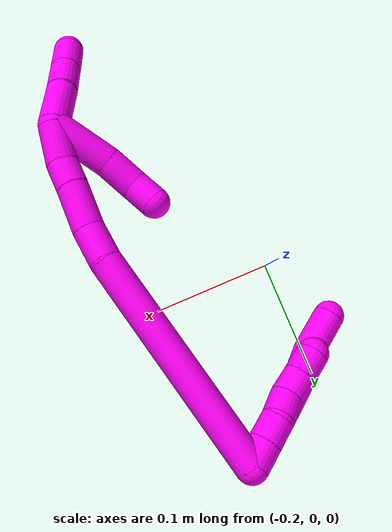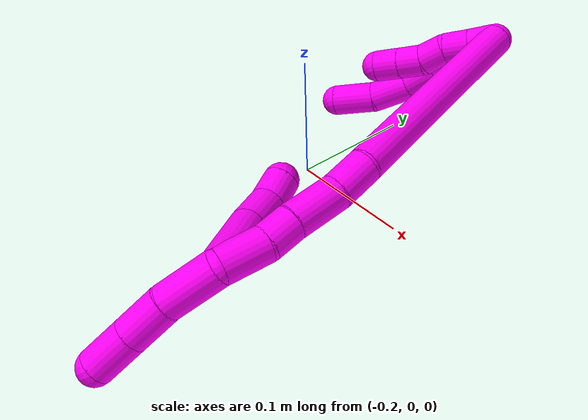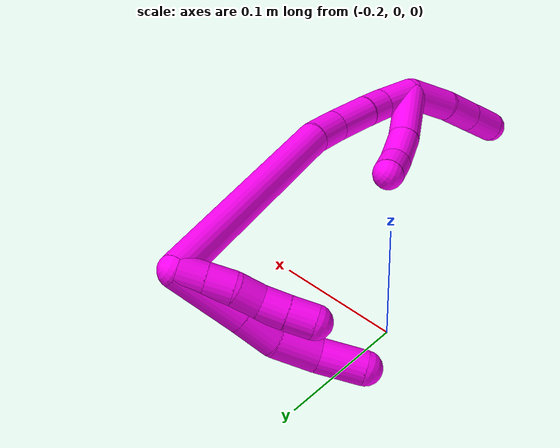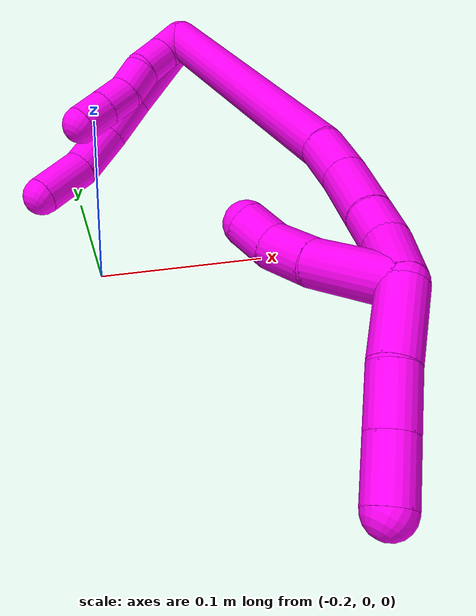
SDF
<sdf version="1.7">
 <world name="default">
  <model name="10">
   <static>0</static>
   <link name="10">
    <collision name="collision-cylinder-e_1_2_8">
     <pose>0.00027 0.003847 -0.027389 -3.00204 0.009757 -0.13939</pose>
     <geometry><cylinder><radius>0.0125</radius><length>0.055318</length></cylinder></geometry>
     <surface>
      <friction><ode><mu>1.16</mu><mu2>1.16</mu2><slip1>0</slip1><slip2>0</slip2></ode></friction>
      <contact><ode><kp>1e+06</kp><kd>1</kd><max_vel>0</max_vel><min_depth>0.001</min_depth></ode></contact>
     </surface>
    </collision>
    <visual name="visual-cylinder-e_1_2_8">
     <pose>0.00027 0.003847 -0.027389 -3.00204 0.009757 -0.13939</pose>
     <geometry><cylinder><radius>0.0125</radius><length>0.055318</length></cylinder></geometry>
     <material><ambient>1 0 0.964706 1</ambient></material>
    </visual>
    <collision name="collision-cylinder-e_2_8_9">
     <pose>0.00124 0.009757 -0.068699 -2.9945 0.049741 -0.651205</pose>
     <geometry><cylinder><radius>0.0125</radius><length>0.028182</length></cylinder></geometry>
     <surface>
      <friction><ode><mu>1.16</mu><mu2>1.16</mu2><slip1>0</slip1><slip2>0</slip2></ode></friction>
      <contact><ode><kp>1e+06</kp><kd>1</kd><max_vel>0</max_vel><min_depth>0.001</min_depth></ode></contact>
     </surface>
    </collision>
    <visual name="visual-cylinder-e_2_8_9">
     <pose>0.00124 0.009757 -0.068699 -2.9945 0.049741 -0.651205</pose>
     <geometry><cylinder><radius>0.0125</radius><length>0.028182</length></cylinder></geometry>
     <material><ambient>1 0 0.964706 1</ambient></material>
    </visual>
    <collision name="collision-cylinder-e_3_9_10">
     <pose>-0.000244 0.010872 -0.098638 3.08253 -0.135334 -2.31944</pose>
     <geometry><cylinder><radius>0.0125</radius><length>0.032387</length></cylinder></geometry>
     <surface>
      <friction><ode><mu>1.16</mu><mu2>1.16</mu2><slip1>0</slip1><slip2>0</slip2></ode></friction>
      <contact><ode><kp>1e+06</kp><kd>1</kd><max_vel>0</max_vel><min_depth>0.001</min_depth></ode></contact>
     </surface>
    </collision>
    <visual name="visual-cylinder-e_3_9_10">
     <pose>-0.000244 0.010872 -0.098638 3.08253 -0.135334 -2.31944</pose>
     <geometry><cylinder><radius>0.0125</radius><length>0.032387</length></cylinder></geometry>
     <material><ambient>1 0 0.964706 1</ambient></material>
    </visual>
    <collision name="collision-cylinder-e_4_10_6">
     <pose>-0.008665 0.009795 -0.130531 3.13341 -0.374285 -3.09837</pose>
     <geometry><cylinder><radius>0.0125</radius><length>0.034114</length></cylinder></geometry>
     <surface>
      <friction><ode><mu>1.16</mu><mu2>1.16</mu2><slip1>0</slip1><slip2>0</slip2></ode></friction>
      <contact><ode><kp>1e+06</kp><kd>1</kd><max_vel>0</max_vel><min_depth>0.001</min_depth></ode></contact>
     </surface>
    </collision>
    <visual name="visual-cylinder-e_4_10_6">
     <pose>-0.008665 0.009795 -0.130531 3.13341 -0.374285 -3.09837</pose>
     <geometry><cylinder><radius>0.0125</radius><length>0.034114</length></cylinder></geometry>
     <material><ambient>1 0 0.964706 1</ambient></material>
    </visual>
    <collision name="collision-cylinder-e_1_2_11">
     <pose>-0.002841 -0.00013 -0.009587 3.12805 -0.288077 -3.04826</pose>
     <geometry><cylinder><radius>0.0125</radius><length>0.02</length></cylinder></geometry>
     <surface>
      <friction><ode><mu>1.16</mu><mu2>1.16</mu2><slip1>0</slip1><slip2>0</slip2></ode></friction>
      <contact><ode><kp>1e+06</kp><kd>1</kd><max_vel>0</max_vel><min_depth>0.001</min_depth></ode></contact>
     </surface>
    </collision>
    <visual name="visual-cylinder-e_1_2_11">
     <pose>-0.002841 -0.00013 -0.009587 3.12805 -0.288077 -3.04826</pose>
     <geometry><cylinder><radius>0.0125</radius><length>0.02</length></cylinder></geometry>
     <material><ambient>1 0 0.964706 1</ambient></material>
    </visual>
    <collision name="collision-cylinder-e_2_11_12">
     <pose>-0.008799 -0.000257 -0.028676 -3.14126 -0.316931 3.13949</pose>
     <geometry><cylinder><radius>0.0125</radius><length>0.02</length></cylinder></geometry>
     <surface>
      <friction><ode><mu>1.16</mu><mu2>1.16</mu2><slip1>0</slip1><slip2>0</slip2></ode></friction>
      <contact><ode><kp>1e+06</kp><kd>1</kd><max_vel>0</max_vel><min_depth>0.001</min_depth></ode></contact>
     </surface>
    </collision>
    <visual name="visual-cylinder-e_2_11_12">
     <pose>-0.008799 -0.000257 -0.028676 -3.14126 -0.316931 3.13949</pose>
     <geometry><cylinder><radius>0.0125</radius><length>0.02</length></cylinder></geometry>
     <material><ambient>1 0 0.964706 1</ambient></material>
    </visual>
    <collision name="collision-cylinder-e_3_12_13">
     <pose>-0.012127 -0.000143 -0.048175 -3.13055 -0.02117 2.17983</pose>
     <geometry><cylinder><radius>0.0125</radius><length>0.02</length></cylinder></geometry>
     <surface>
      <friction><ode><mu>1.16</mu><mu2>1.16</mu2><slip1>0</slip1><slip2>0</slip2></ode></friction>
      <contact><ode><kp>1e+06</kp><kd>1</kd><max_vel>0</max_vel><min_depth>0.001</min_depth></ode></contact>
     </surface>
    </collision>
    <visual name="visual-cylinder-e_3_12_13">
     <pose>-0.012127 -0.000143 -0.048175 -3.13055 -0.02117 2.17983</pose>
     <geometry><cylinder><radius>0.0125</radius><length>0.02</length></cylinder></geometry>
     <material><ambient>1 0 0.964706 1</ambient></material>
    </visual>
    <collision name="collision-cylinder-e_4_13_14">
     <pose>-0.015502 0.000619 -0.067636 -3.07284 -0.321883 2.72411</pose>
     <geometry><cylinder><radius>0.0125</radius><length>0.02</length></cylinder></geometry>
     <surface>
      <friction><ode><mu>1.16</mu><mu2>1.16</mu2><slip1>0</slip1><slip2>0</slip2></ode></friction>
      <contact><ode><kp>1e+06</kp><kd>1</kd><max_vel>0</max_vel><min_depth>0.001</min_depth></ode></contact>
     </surface>
    </collision>
    <visual name="visual-cylinder-e_4_13_14">
     <pose>-0.015502 0.000619 -0.067636 -3.07284 -0.321883 2.72411</pose>
     <geometry><cylinder><radius>0.0125</radius><length>0.02</length></cylinder></geometry>
     <material><ambient>1 0 0.964706 1</ambient></material>
    </visual>
    <collision name="collision-cylinder-e_5_14_5">
     <pose>-0.021994 0.001581 -0.086525 -3.10868 -0.339322 2.95001</pose>
     <geometry><cylinder><radius>0.0125</radius><length>0.02</length></cylinder></geometry>
     <surface>
      <friction><ode><mu>1.16</mu><mu2>1.16</mu2><slip1>0</slip1><slip2>0</slip2></ode></friction>
      <contact><ode><kp>1e+06</kp><kd>1</kd><max_vel>0</max_vel><min_depth>0.001</min_depth></ode></contact>
     </surface>
    </collision>
    <visual name="visual-cylinder-e_5_14_5">
     <pose>-0.021994 0.001581 -0.086525 -3.10868 -0.339322 2.95001</pose>
     <geometry><cylinder><radius>0.0125</radius><length>0.02</length></cylinder></geometry>
     <material><ambient>1 0 0.964706 1</ambient></material>
    </visual>
    <collision name="collision-cylinder-e_1_2_15">
     <pose>0.00392 -0.083376 -0.03699 1.98836 0.04295 0.066028</pose>
     <geometry><cylinder><radius>0.0125</radius><length>0.182595</length></cylinder></geometry>
     <surface>
      <friction><ode><mu>1.16</mu><mu2>1.16</mu2><slip1>0</slip1><slip2>0</slip2></ode></friction>
      <contact><ode><kp>1e+06</kp><kd>1</kd><max_vel>0</max_vel><min_depth>0.001</min_depth></ode></contact>
     </surface>
    </collision>
    <visual name="visual-cylinder-e_1_2_15">
     <pose>0.00392 -0.083376 -0.03699 1.98836 0.04295 0.066028</pose>
     <geometry><cylinder><radius>0.0125</radius><length>0.182595</length></cylinder></geometry>
     <material><ambient>1 0 0.964706 1</ambient></material>
    </visual>
    <collision name="collision-cylinder-e_2_15_16">
     <pose>0.008983 -0.178332 -0.081814 2.16563 0.081601 0.153515</pose>
     <geometry><cylinder><radius>0.0125</radius><length>0.028055</length></cylinder></geometry>
     <surface>
      <friction><ode><mu>1.16</mu><mu2>1.16</mu2><slip1>0</slip1><slip2>0</slip2></ode></friction>
      <contact><ode><kp>1e+06</kp><kd>1</kd><max_vel>0</max_vel><min_depth>0.001</min_depth></ode></contact>
     </surface>
    </collision>
    <visual name="visual-cylinder-e_2_15_16">
     <pose>0.008983 -0.178332 -0.081814 2.16563 0.081601 0.153515</pose>
     <geometry><cylinder><radius>0.0125</radius><length>0.028055</length></cylinder></geometry>
     <material><ambient>1 0 0.964706 1</ambient></material>
    </visual>
    <collision name="collision-cylinder-e_3_16_17">
     <pose>0.009312 -0.204278 -0.100575 2.22099 -0.045106 -0.090924</pose>
     <geometry><cylinder><radius>0.0125</radius><length>0.036136</length></cylinder></geometry>
     <surface>
      <friction><ode><mu>1.16</mu><mu2>1.16</mu2><slip1>0</slip1><slip2>0</slip2></ode></friction>
      <contact><ode><kp>1e+06</kp><kd>1</kd><max_vel>0</max_vel><min_depth>0.001</min_depth></ode></contact>
     </surface>
    </collision>
    <visual name="visual-cylinder-e_3_16_17">
     <pose>0.009312 -0.204278 -0.100575 2.22099 -0.045106 -0.090924</pose>
     <geometry><cylinder><radius>0.0125</radius><length>0.036136</length></cylinder></geometry>
     <material><ambient>1 0 0.964706 1</ambient></material>
    </visual>
    <collision name="collision-cylinder-e_4_17_18">
     <pose>0.008937 -0.227102 -0.118038 2.22884 0.041151 0.083783</pose>
     <geometry><cylinder><radius>0.0125</radius><length>0.021396</length></cylinder></geometry>
     <surface>
      <friction><ode><mu>1.16</mu><mu2>1.16</mu2><slip1>0</slip1><slip2>0</slip2></ode></friction>
      <contact><ode><kp>1e+06</kp><kd>1</kd><max_vel>0</max_vel><min_depth>0.001</min_depth></ode></contact>
     </surface>
    </collision>
    <visual name="visual-cylinder-e_4_17_18">
     <pose>0.008937 -0.227102 -0.118038 2.22884 0.041151 0.083783</pose>
     <geometry><cylinder><radius>0.0125</radius><length>0.021396</length></cylinder></geometry>
     <material><ambient>1 0 0.964706 1</ambient></material>
    </visual>
    <collision name="collision-cylinder-e_5_18_1">
     <pose>0.006874 -0.247062 -0.135276 2.32009 -0.158002 -0.359616</pose>
     <geometry><cylinder><radius>0.0125</radius><length>0.031819</length></cylinder></geometry>
     <surface>
      <friction><ode><mu>1.16</mu><mu2>1.16</mu2><slip1>0</slip1><slip2>0</slip2></ode></friction>
      <contact><ode><kp>1e+06</kp><kd>1</kd><max_vel>0</max_vel><min_depth>0.001</min_depth></ode></contact>
     </surface>
    </collision>
    <visual name="visual-cylinder-e_5_18_1">
     <pose>0.006874 -0.247062 -0.135276 2.32009 -0.158002 -0.359616</pose>
     <geometry><cylinder><radius>0.0125</radius><length>0.031819</length></cylinder></geometry>
     <material><ambient>1 0 0.964706 1</ambient></material>
    </visual>
    <collision name="collision-cylinder-e_1_1_19">
     <pose>0.005836 -0.265132 -0.164572 2.80211 0.074159 0.426316</pose>
     <geometry><cylinder><radius>0.0125</radius><length>0.039548</length></cylinder></geometry>
     <surface>
      <friction><ode><mu>1.16</mu><mu2>1.16</mu2><slip1>0</slip1><slip2>0</slip2></ode></friction>
      <contact><ode><kp>1e+06</kp><kd>1</kd><max_vel>0</max_vel><min_depth>0.001</min_depth></ode></contact>
     </surface>
    </collision>
    <visual name="visual-cylinder-e_1_1_19">
     <pose>0.005836 -0.265132 -0.164572 2.80211 0.074159 0.426316</pose>
     <geometry><cylinder><radius>0.0125</radius><length>0.039548</length></cylinder></geometry>
     <material><ambient>1 0 0.964706 1</ambient></material>
    </visual>
    <collision name="collision-cylinder-e_2_19_20">
     <pose>0.010551 -0.27664 -0.19696 2.79761 0.218237 1.12535</pose>
     <geometry><cylinder><radius>0.0125</radius><length>0.030018</length></cylinder></geometry>
     <surface>
      <friction><ode><mu>1.16</mu><mu2>1.16</mu2><slip1>0</slip1><slip2>0</slip2></ode></friction>
      <contact><ode><kp>1e+06</kp><kd>1</kd><max_vel>0</max_vel><min_depth>0.001</min_depth></ode></contact>
     </surface>
    </collision>
    <visual name="visual-cylinder-e_2_19_20">
     <pose>0.010551 -0.27664 -0.19696 2.79761 0.218237 1.12535</pose>
     <geometry><cylinder><radius>0.0125</radius><length>0.030018</length></cylinder></geometry>
     <material><ambient>1 0 0.964706 1</ambient></material>
    </visual>
    <collision name="collision-cylinder-e_3_20_4">
     <pose>0.017082 -0.28662 -0.224734 2.79568 0.217351 1.1165</pose>
     <geometry><cylinder><radius>0.0125</radius><length>0.030434</length></cylinder></geometry>
     <surface>
      <friction><ode><mu>1.16</mu><mu2>1.16</mu2><slip1>0</slip1><slip2>0</slip2></ode></friction>
      <contact><ode><kp>1e+06</kp><kd>1</kd><max_vel>0</max_vel><min_depth>0.001</min_depth></ode></contact>
     </surface>
    </collision>
    <visual name="visual-cylinder-e_3_20_4">
     <pose>0.017082 -0.28662 -0.224734 2.79568 0.217351 1.1165</pose>
     <geometry><cylinder><radius>0.0125</radius><length>0.030434</length></cylinder></geometry>
     <material><ambient>1 0 0.964706 1</ambient></material>
    </visual>
    <collision name="collision-cylinder-e_1_1_21">
     <pose>0.002612 -0.233523 -0.146331 -1.58489 -0.070102 0.071097</pose>
     <geometry><cylinder><radius>0.0125</radius><length>0.050214</length></cylinder></geometry>
     <surface>
      <friction><ode><mu>1.16</mu><mu2>1.16</mu2><slip1>0</slip1><slip2>0</slip2></ode></friction>
      <contact><ode><kp>1e+06</kp><kd>1</kd><max_vel>0</max_vel><min_depth>0.001</min_depth></ode></contact>
     </surface>
    </collision>
    <visual name="visual-cylinder-e_1_1_21">
     <pose>0.002612 -0.233523 -0.146331 -1.58489 -0.070102 0.071097</pose>
     <geometry><cylinder><radius>0.0125</radius><length>0.050214</length></cylinder></geometry>
     <material><ambient>1 0 0.964706 1</ambient></material>
    </visual>
    <collision name="collision-cylinder-e_2_21_22">
     <pose>6.6e-05 -0.194484 -0.144712 -1.43087 -0.055658 0.048371</pose>
     <geometry><cylinder><radius>0.0125</radius><length>0.028311</length></cylinder></geometry>
     <surface>
      <friction><ode><mu>1.16</mu><mu2>1.16</mu2><slip1>0</slip1><slip2>0</slip2></ode></friction>
      <contact><ode><kp>1e+06</kp><kd>1</kd><max_vel>0</max_vel><min_depth>0.001</min_depth></ode></contact>
     </surface>
    </collision>
    <visual name="visual-cylinder-e_2_21_22">
     <pose>6.6e-05 -0.194484 -0.144712 -1.43087 -0.055658 0.048371</pose>
     <geometry><cylinder><radius>0.0125</radius><length>0.028311</length></cylinder></geometry>
     <material><ambient>1 0 0.964706 1</ambient></material>
    </visual>
    <collision name="collision-cylinder-e_3_22_3">
     <pose>-0.003711 -0.170747 -0.139357 -1.23643 -0.282206 0.201371</pose>
     <geometry><cylinder><radius>0.0125</radius><length>0.021475</length></cylinder></geometry>
     <surface>
      <friction><ode><mu>1.16</mu><mu2>1.16</mu2><slip1>0</slip1><slip2>0</slip2></ode></friction>
      <contact><ode><kp>1e+06</kp><kd>1</kd><max_vel>0</max_vel><min_depth>0.001</min_depth></ode></contact>
     </surface>
    </collision>
    <visual name="visual-cylinder-e_3_22_3">
     <pose>-0.003711 -0.170747 -0.139357 -1.23643 -0.282206 0.201371</pose>
     <geometry><cylinder><radius>0.0125</radius><length>0.021475</length></cylinder></geometry>
     <material><ambient>1 0 0.964706 1</ambient></material>
    </visual>
    <collision name="collision-sphere-3">
     <pose>-0.006701 -0.161005 -0.135973 0 -0 0</pose>
     <geometry><sphere><radius>0.0125</radius></sphere></geometry>
     <surface>
      <friction><ode><mu>1.16</mu><mu2>1.16</mu2><slip1>0</slip1><slip2>0</slip2></ode></friction>
      <contact><ode><kp>1e+06</kp><kd>1</kd><max_vel>0</max_vel><min_depth>0.001</min_depth></ode></contact>
     </surface>
    </collision>
    <visual name="visual-sphere-3">
     <pose>-0.006701 -0.161005 -0.135973 0 -0 0</pose>
     <geometry><sphere><radius>0.0125</radius></sphere></geometry>
     <material><ambient>1 0 0.964706 1</ambient></material>
    </visual>
    <collision name="collision-sphere-22">
     <pose>-0.000721 -0.180489 -0.142741 0 -0 0</pose>
     <geometry><sphere><radius>0.0125</radius></sphere></geometry>
     <surface>
      <friction><ode><mu>1.16</mu><mu2>1.16</mu2><slip1>0</slip1><slip2>0</slip2></ode></friction>
      <contact><ode><kp>1e+06</kp><kd>1</kd><max_vel>0</max_vel><min_depth>0.001</min_depth></ode></contact>
     </surface>
    </collision>
    <visual name="visual-sphere-22">
     <pose>-0.000721 -0.180489 -0.142741 0 -0 0</pose>
     <geometry><sphere><radius>0.0125</radius></sphere></geometry>
     <material><ambient>1 0 0.964706 1</ambient></material>
    </visual>
    <collision name="collision-sphere-21">
     <pose>0.000854 -0.20848 -0.146684 0 -0 0</pose>
     <geometry><sphere><radius>0.0125</radius></sphere></geometry>
     <surface>
      <friction><ode><mu>1.16</mu><mu2>1.16</mu2><slip1>0</slip1><slip2>0</slip2></ode></friction>
      <contact><ode><kp>1e+06</kp><kd>1</kd><max_vel>0</max_vel><min_depth>0.001</min_depth></ode></contact>
     </surface>
    </collision>
    <visual name="visual-sphere-21">
     <pose>0.000854 -0.20848 -0.146684 0 -0 0</pose>
     <geometry><sphere><radius>0.0125</radius></sphere></geometry>
     <material><ambient>1 0 0.964706 1</ambient></material>
    </visual>
    <collision name="collision-sphere-4">
     <pose>0.020363 -0.291658 -0.238713 0 -0 0</pose>
     <geometry><sphere><radius>0.0125</radius></sphere></geometry>
     <surface>
      <friction><ode><mu>1.16</mu><mu2>1.16</mu2><slip1>0</slip1><slip2>0</slip2></ode></friction>
      <contact><ode><kp>1e+06</kp><kd>1</kd><max_vel>0</max_vel><min_depth>0.001</min_depth></ode></contact>
     </surface>
    </collision>
    <visual name="visual-sphere-4">
     <pose>0.020363 -0.291658 -0.238713 0 -0 0</pose>
     <geometry><sphere><radius>0.0125</radius></sphere></geometry>
     <material><ambient>1 0 0.964706 1</ambient></material>
    </visual>
    <collision name="collision-sphere-20">
     <pose>0.0138 -0.281581 -0.210755 0 -0 0</pose>
     <geometry><sphere><radius>0.0125</radius></sphere></geometry>
     <surface>
      <friction><ode><mu>1.16</mu><mu2>1.16</mu2><slip1>0</slip1><slip2>0</slip2></ode></friction>
      <contact><ode><kp>1e+06</kp><kd>1</kd><max_vel>0</max_vel><min_depth>0.001</min_depth></ode></contact>
     </surface>
    </collision>
    <visual name="visual-sphere-20">
     <pose>0.0138 -0.281581 -0.210755 0 -0 0</pose>
     <geometry><sphere><radius>0.0125</radius></sphere></geometry>
     <material><ambient>1 0 0.964706 1</ambient></material>
    </visual>
    <collision name="collision-sphere-11">
     <pose>-0.005682 -0.00026 -0.019174 0 -0 0</pose>
     <geometry><sphere><radius>0.0125</radius></sphere></geometry>
     <surface>
      <friction><ode><mu>1.16</mu><mu2>1.16</mu2><slip1>0</slip1><slip2>0</slip2></ode></friction>
      <contact><ode><kp>1e+06</kp><kd>1</kd><max_vel>0</max_vel><min_depth>0.001</min_depth></ode></contact>
     </surface>
    </collision>
    <visual name="visual-sphere-11">
     <pose>-0.005682 -0.00026 -0.019174 0 -0 0</pose>
     <geometry><sphere><radius>0.0125</radius></sphere></geometry>
     <material><ambient>1 0 0.964706 1</ambient></material>
    </visual>
    <collision name="collision-sphere-6">
     <pose>-0.014901 0.009665 -0.146406 0 -0 0</pose>
     <geometry><sphere><radius>0.0125</radius></sphere></geometry>
     <surface>
      <friction><ode><mu>1.16</mu><mu2>1.16</mu2><slip1>0</slip1><slip2>0</slip2></ode></friction>
      <contact><ode><kp>1e+06</kp><kd>1</kd><max_vel>0</max_vel><min_depth>0.001</min_depth></ode></contact>
     </surface>
    </collision>
    <visual name="visual-sphere-6">
     <pose>-0.014901 0.009665 -0.146406 0 -0 0</pose>
     <geometry><sphere><radius>0.0125</radius></sphere></geometry>
     <material><ambient>1 0 0.964706 1</ambient></material>
    </visual>
    <collision name="collision-sphere-10">
     <pose>-0.002429 0.009925 -0.114655 0 -0 0</pose>
     <geometry><sphere><radius>0.0125</radius></sphere></geometry>
     <surface>
      <friction><ode><mu>1.16</mu><mu2>1.16</mu2><slip1>0</slip1><slip2>0</slip2></ode></friction>
      <contact><ode><kp>1e+06</kp><kd>1</kd><max_vel>0</max_vel><min_depth>0.001</min_depth></ode></contact>
     </surface>
    </collision>
    <visual name="visual-sphere-10">
     <pose>-0.002429 0.009925 -0.114655 0 -0 0</pose>
     <geometry><sphere><radius>0.0125</radius></sphere></geometry>
     <material><ambient>1 0 0.964706 1</ambient></material>
    </visual>
    <collision name="collision-sphere-9">
     <pose>0.001941 0.011819 -0.082621 0 -0 0</pose>
     <geometry><sphere><radius>0.0125</radius></sphere></geometry>
     <surface>
      <friction><ode><mu>1.16</mu><mu2>1.16</mu2><slip1>0</slip1><slip2>0</slip2></ode></friction>
      <contact><ode><kp>1e+06</kp><kd>1</kd><max_vel>0</max_vel><min_depth>0.001</min_depth></ode></contact>
     </surface>
    </collision>
    <visual name="visual-sphere-9">
     <pose>0.001941 0.011819 -0.082621 0 -0 0</pose>
     <geometry><sphere><radius>0.0125</radius></sphere></geometry>
     <material><ambient>1 0 0.964706 1</ambient></material>
    </visual>
    <collision name="collision-sphere-2">
     <geometry><sphere><radius>0.0125</radius></sphere></geometry>
     <surface>
      <friction><ode><mu>1.16</mu><mu2>1.16</mu2><slip1>0</slip1><slip2>0</slip2></ode></friction>
      <contact><ode><kp>1e+06</kp><kd>1</kd><max_vel>0</max_vel><min_depth>0.001</min_depth></ode></contact>
     </surface>
    </collision>
    <visual name="visual-sphere-2">
     <geometry><sphere><radius>0.0125</radius></sphere></geometry>
     <material><ambient>1 0 0.964706 1</ambient></material>
    </visual>
    <collision name="collision-sphere-19">
     <pose>0.007301 -0.271698 -0.183166 0 -0 0</pose>
     <geometry><sphere><radius>0.0125</radius></sphere></geometry>
     <surface>
      <friction><ode><mu>1.16</mu><mu2>1.16</mu2><slip1>0</slip1><slip2>0</slip2></ode></friction>
      <contact><ode><kp>1e+06</kp><kd>1</kd><max_vel>0</max_vel><min_depth>0.001</min_depth></ode></contact>
     </surface>
    </collision>
    <visual name="visual-sphere-19">
     <pose>0.007301 -0.271698 -0.183166 0 -0 0</pose>
     <geometry><sphere><radius>0.0125</radius></sphere></geometry>
     <material><ambient>1 0 0.964706 1</ambient></material>
    </visual>
    <collision name="collision-sphere-8">
     <pose>0.00054 0.007694 -0.054778 0 -0 0</pose>
     <geometry><sphere><radius>0.0125</radius></sphere></geometry>
     <surface>
      <friction><ode><mu>1.16</mu><mu2>1.16</mu2><slip1>0</slip1><slip2>0</slip2></ode></friction>
      <contact><ode><kp>1e+06</kp><kd>1</kd><max_vel>0</max_vel><min_depth>0.001</min_depth></ode></contact>
     </surface>
    </collision>
    <visual name="visual-sphere-8">
     <pose>0.00054 0.007694 -0.054778 0 -0 0</pose>
     <geometry><sphere><radius>0.0125</radius></sphere></geometry>
     <material><ambient>1 0 0.964706 1</ambient></material>
    </visual>
    <collision name="collision-sphere-12">
     <pose>-0.011915 -0.000253 -0.038178 0 -0 0</pose>
     <geometry><sphere><radius>0.0125</radius></sphere></geometry>
     <surface>
      <friction><ode><mu>1.16</mu><mu2>1.16</mu2><slip1>0</slip1><slip2>0</slip2></ode></friction>
      <contact><ode><kp>1e+06</kp><kd>1</kd><max_vel>0</max_vel><min_depth>0.001</min_depth></ode></contact>
     </surface>
    </collision>
    <visual name="visual-sphere-12">
     <pose>-0.011915 -0.000253 -0.038178 0 -0 0</pose>
     <geometry><sphere><radius>0.0125</radius></sphere></geometry>
     <material><ambient>1 0 0.964706 1</ambient></material>
    </visual>
    <collision name="collision-sphere-13">
     <pose>-0.012339 -3.3e-05 -0.058172 0 -0 0</pose>
     <geometry><sphere><radius>0.0125</radius></sphere></geometry>
     <surface>
      <friction><ode><mu>1.16</mu><mu2>1.16</mu2><slip1>0</slip1><slip2>0</slip2></ode></friction>
      <contact><ode><kp>1e+06</kp><kd>1</kd><max_vel>0</max_vel><min_depth>0.001</min_depth></ode></contact>
     </surface>
    </collision>
    <visual name="visual-sphere-13">
     <pose>-0.012339 -3.3e-05 -0.058172 0 -0 0</pose>
     <geometry><sphere><radius>0.0125</radius></sphere></geometry>
     <material><ambient>1 0 0.964706 1</ambient></material>
    </visual>
    <collision name="collision-sphere-14">
     <pose>-0.018666 0.001271 -0.0771 0 -0 0</pose>
     <geometry><sphere><radius>0.0125</radius></sphere></geometry>
     <surface>
      <friction><ode><mu>1.16</mu><mu2>1.16</mu2><slip1>0</slip1><slip2>0</slip2></ode></friction>
      <contact><ode><kp>1e+06</kp><kd>1</kd><max_vel>0</max_vel><min_depth>0.001</min_depth></ode></contact>
     </surface>
    </collision>
    <visual name="visual-sphere-14">
     <pose>-0.018666 0.001271 -0.0771 0 -0 0</pose>
     <geometry><sphere><radius>0.0125</radius></sphere></geometry>
     <material><ambient>1 0 0.964706 1</ambient></material>
    </visual>
    <collision name="collision-sphere-5">
     <pose>-0.025323 0.001892 -0.09595 0 -0 0</pose>
     <geometry><sphere><radius>0.0125</radius></sphere></geometry>
     <surface>
      <friction><ode><mu>1.16</mu><mu2>1.16</mu2><slip1>0</slip1><slip2>0</slip2></ode></friction>
      <contact><ode><kp>1e+06</kp><kd>1</kd><max_vel>0</max_vel><min_depth>0.001</min_depth></ode></contact>
     </surface>
    </collision>
    <visual name="visual-sphere-5">
     <pose>-0.025323 0.001892 -0.09595 0 -0 0</pose>
     <geometry><sphere><radius>0.0125</radius></sphere></geometry>
     <material><ambient>1 0 0.964706 1</ambient></material>
    </visual>
    <collision name="collision-sphere-15">
     <pose>0.00784 -0.166752 -0.07398 0 -0 0</pose>
     <geometry><sphere><radius>0.0125</radius></sphere></geometry>
     <surface>
      <friction><ode><mu>1.16</mu><mu2>1.16</mu2><slip1>0</slip1><slip2>0</slip2></ode></friction>
      <contact><ode><kp>1e+06</kp><kd>1</kd><max_vel>0</max_vel><min_depth>0.001</min_depth></ode></contact>
     </surface>
    </collision>
    <visual name="visual-sphere-15">
     <pose>0.00784 -0.166752 -0.07398 0 -0 0</pose>
     <geometry><sphere><radius>0.0125</radius></sphere></geometry>
     <material><ambient>1 0 0.964706 1</ambient></material>
    </visual>
    <collision name="collision-sphere-16">
     <pose>0.010127 -0.189911 -0.089649 0 -0 0</pose>
     <geometry><sphere><radius>0.0125</radius></sphere></geometry>
     <surface>
      <friction><ode><mu>1.16</mu><mu2>1.16</mu2><slip1>0</slip1><slip2>0</slip2></ode></friction>
      <contact><ode><kp>1e+06</kp><kd>1</kd><max_vel>0</max_vel><min_depth>0.001</min_depth></ode></contact>
     </surface>
    </collision>
    <visual name="visual-sphere-16">
     <pose>0.010127 -0.189911 -0.089649 0 -0 0</pose>
     <geometry><sphere><radius>0.0125</radius></sphere></geometry>
     <material><ambient>1 0 0.964706 1</ambient></material>
    </visual>
    <collision name="collision-sphere-17">
     <pose>0.008497 -0.218645 -0.111501 0 -0 0</pose>
     <geometry><sphere><radius>0.0125</radius></sphere></geometry>
     <surface>
      <friction><ode><mu>1.16</mu><mu2>1.16</mu2><slip1>0</slip1><slip2>0</slip2></ode></friction>
      <contact><ode><kp>1e+06</kp><kd>1</kd><max_vel>0</max_vel><min_depth>0.001</min_depth></ode></contact>
     </surface>
    </collision>
    <visual name="visual-sphere-17">
     <pose>0.008497 -0.218645 -0.111501 0 -0 0</pose>
     <geometry><sphere><radius>0.0125</radius></sphere></geometry>
     <material><ambient>1 0 0.964706 1</ambient></material>
    </visual>
    <collision name="collision-sphere-18">
     <pose>0.009378 -0.235559 -0.124575 0 -0 0</pose>
     <geometry><sphere><radius>0.0125</radius></sphere></geometry>
     <surface>
      <friction><ode><mu>1.16</mu><mu2>1.16</mu2><slip1>0</slip1><slip2>0</slip2></ode></friction>
      <contact><ode><kp>1e+06</kp><kd>1</kd><max_vel>0</max_vel><min_depth>0.001</min_depth></ode></contact>
     </surface>
    </collision>
    <visual name="visual-sphere-18">
     <pose>0.009378 -0.235559 -0.124575 0 -0 0</pose>
     <geometry><sphere><radius>0.0125</radius></sphere></geometry>
     <material><ambient>1 0 0.964706 1</ambient></material>
    </visual>
    <collision name="collision-sphere-1">
     <pose>0.004371 -0.258565 -0.145978 0 -0 0</pose>
     <geometry><sphere><radius>0.0125</radius></sphere></geometry>
     <surface>
      <friction><ode><mu>1.16</mu><mu2>1.16</mu2><slip1>0</slip1><slip2>0</slip2></ode></friction>
      <contact><ode><kp>1e+06</kp><kd>1</kd><max_vel>0</max_vel><min_depth>0.001</min_depth></ode></contact>
     </surface>
    </collision>
    <visual name="visual-sphere-1">
     <pose>0.004371 -0.258565 -0.145978 0 -0 0</pose>
     <geometry><sphere><radius>0.0125</radius></sphere></geometry>
     <material><ambient>1 0 0.964706 1</ambient></material>
    </visual>
    <inertial>
     <pose>0.001808 -0.116711 -0.092163 0 -0 0</pose>
     <mass>0.75</mass>
     <inertia>
      <ixx>0.000593</ixx>
      <ixy>0</ixy>
      <ixz>0</ixz>
      <iyy>-0.000203</iyy>
      <iyz>0</iyz>
      <izz>0.000411</izz>
     </inertia>
    </inertial>
   </link>
   <pose>-0.12275 0.128524 0.105185 -0.363594 0.902636 0.238892</pose>
  </model>
 </world>
</sdf>
